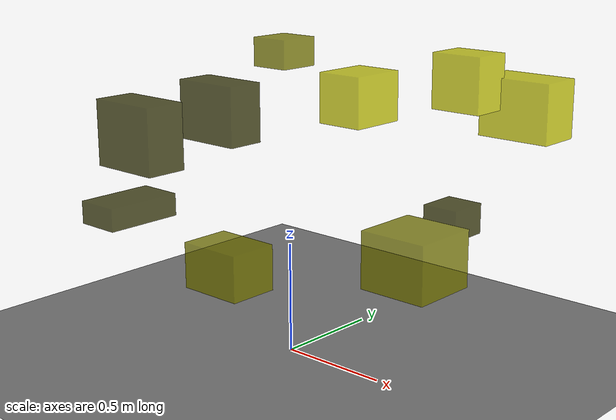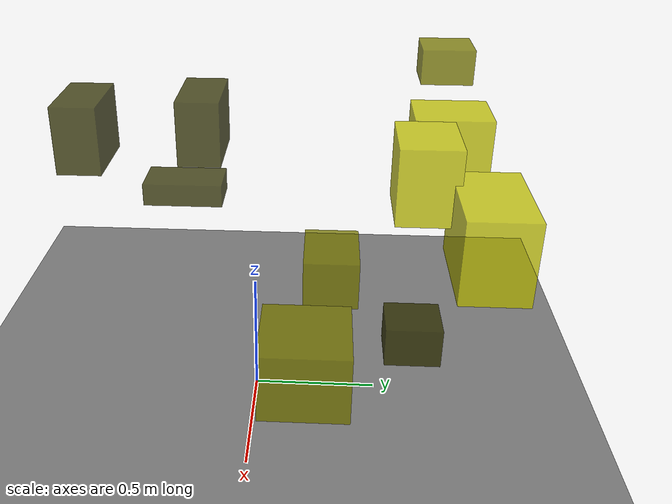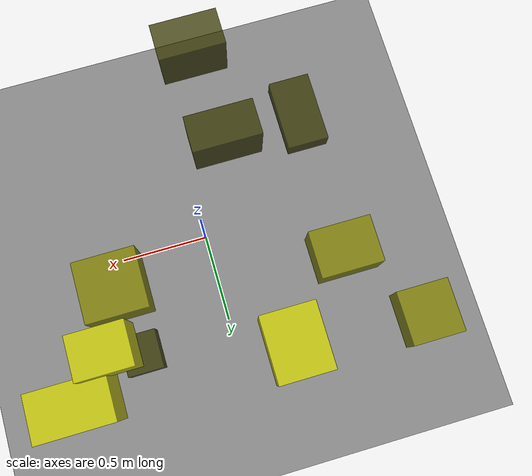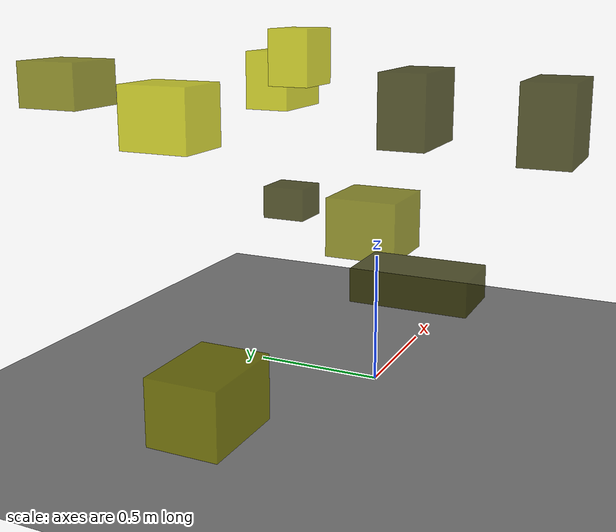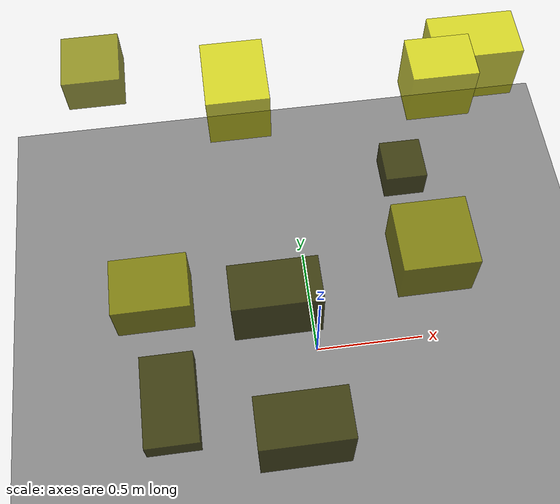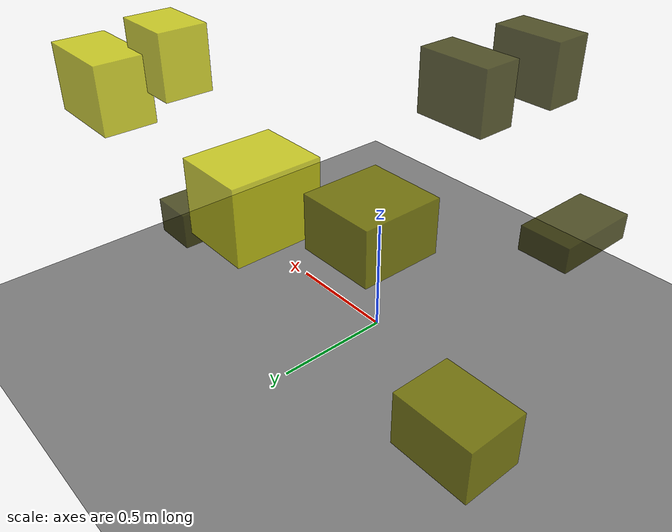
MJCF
<?xml version="1.0"?>
<mujoco model="obstacle_scene">
  <compiler angle="radian" coordinate="local"/>
  <option timestep="0.001" gravity="0 0 -9.81"/>

  <asset>
    <material name="obstacle_mat" rgba="0.8 0.8 0.0 0.8"/>
    <material name="ground_mat" rgba="0.5 0.5 0.5 1"/>
  </asset>

  <worldbody>
    <!-- Ground plane -->
    <geom name="ground" type="plane" size="3 3 0.1" material="ground_mat"/>

    <!-- Obstacles -->
    <body name="obstacle_0" pos="-0.639086 -0.378385 0.625381">
      <geom name="obs_0" type="box" size="0.104803 0.181118 0.051937" rgba="0.2 0.2 0.0 0.8"/>
    </body>
    <body name="obstacle_1" pos="-0.791538 0.793312 1.198916">
      <geom name="obs_1" type="box" size="0.108890 0.112578 0.075904" rgba="0.5 0.5 0.0 0.8"/>
    </body>
    <body name="obstacle_2" pos="0.519356 0.578279 1.215122">
      <geom name="obs_2" type="box" size="0.122515 0.094880 0.124181" rgba="0.8 0.8 0.0 0.8"/>
    </body>
    <body name="obstacle_3" pos="-0.168620 -0.676945 1.081900">
      <geom name="obs_3" type="box" size="0.155049 0.087543 0.135834" rgba="0.2 0.2 0.0 0.8"/>
    </body>
    <body name="obstacle_4" pos="0.523039 0.218173 0.493452">
      <geom name="obs_4" type="box" size="0.164017 0.159942 0.130704" rgba="0.5 0.5 0.0 0.8"/>
    </body>
    <body name="obstacle_5" pos="-0.249864 0.759389 1.028513">
      <geom name="obs_5" type="box" size="0.125384 0.150547 0.126618" rgba="0.8 0.8 0.0 0.8"/>
    </body>
    <body name="obstacle_6" pos="-0.203663 -0.213784 1.105747">
      <geom name="obs_6" type="box" size="0.156850 0.083864 0.128791" rgba="0.2 0.2 0.0 0.8"/>
    </body>
    <body name="obstacle_7" pos="-0.736741 0.314790 0.150531">
      <geom name="obs_7" type="box" size="0.180100 0.135851 0.121908" rgba="0.5 0.5 0.0 0.8"/>
    </body>
    <body name="obstacle_8" pos="0.705758 0.755255 1.098790">
      <geom name="obs_8" type="box" size="0.172291 0.104205 0.132435" rgba="0.8 0.8 0.0 0.8"/>
    </body>
    <body name="obstacle_9" pos="0.450744 0.586585 0.577037">
      <geom name="obs_9" type="box" size="0.088941 0.096061 0.070865" rgba="0.2 0.2 0.0 0.8"/>
    </body>
  </worldbody>
</mujoco>
